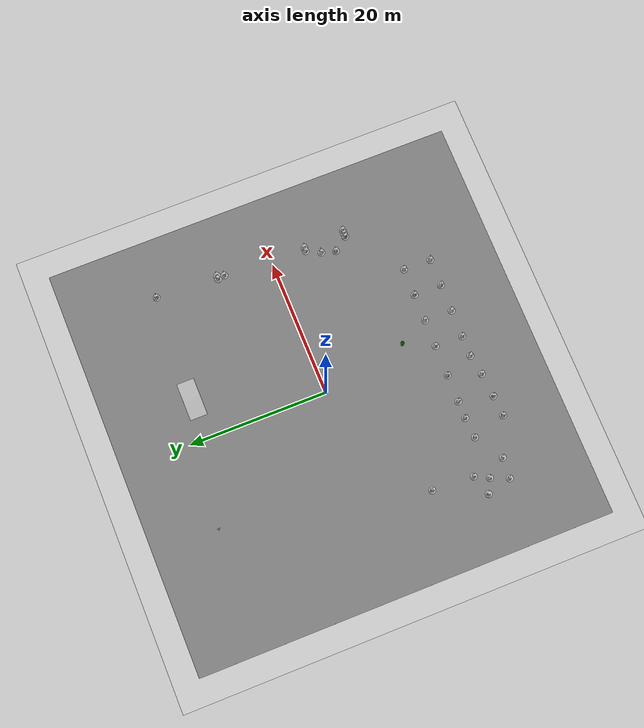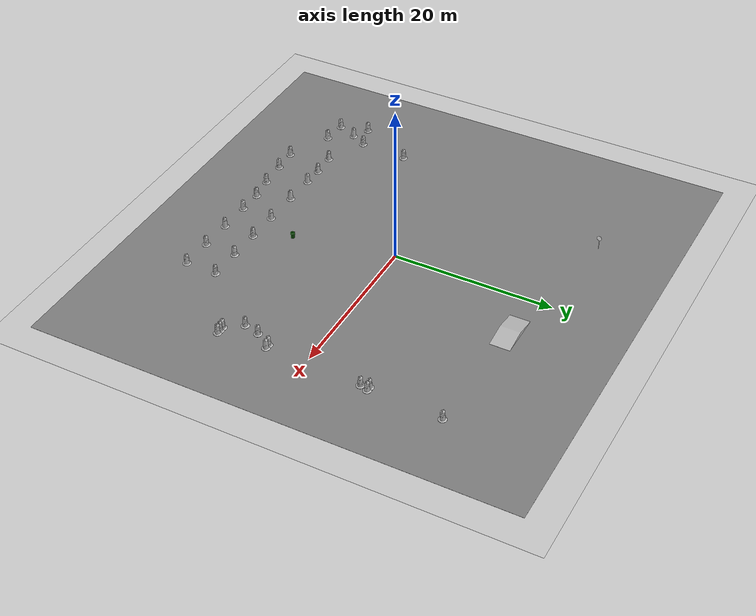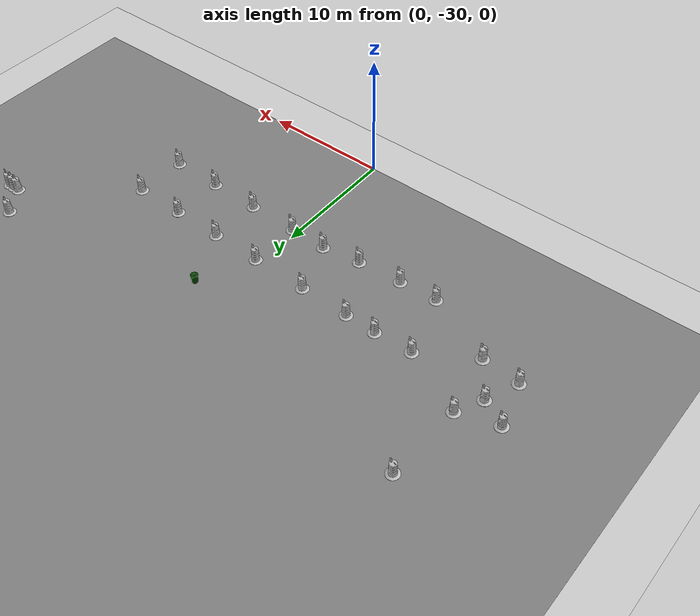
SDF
<sdf version="1.7">
 <world name="default">
  <scene><ambient>1 1 1</ambient><grid>false</grid></scene>
  <frame name="igvc_frame"><pose relative_to="world">-2.5 17.2 0 0 0 3.1415</pose></frame>
  <spherical_coordinates>
   <surface_model>EARTH_WGS84</surface_model>
   <world_frame_orientation>ENU</world_frame_orientation>
   <latitude_deg>42.66791</latitude_deg>
   <longitude_deg>-83.21958</longitude_deg>
   <elevation>286</elevation>
   <heading_deg>0</heading_deg>
  </spherical_coordinates>
  <physics name="1ms" type="ODE">
   <max_step_size>0.001</max_step_size>
   <real_time_factor>1.0</real_time_factor>
  </physics>
  <plugin filename="gz-sim-physics-system" name="gz::sim::systems::Physics"/>
  <plugin filename="gz-sim-user-commands-system" name="gz::sim::systems::UserCommands"/>
  <plugin filename="gz-sim-scene-broadcaster-system" name="gz::sim::systems::SceneBroadcaster"/>
  <plugin filename="gz-sim-contact-system" name="gz::sim::systems::Contact"/>
  <plugin filename="gz-sim-imu-system" name="gz::sim::systems::Imu"/>
  <plugin filename="ignition-gazebo-navsat-system" name="ignition::gazebo::systems::NavSat"/>
  <include>
   <uri>model://ground_plane</uri>
   <name>Ground Plane</name>
   <pose relative_to="igvc_frame">0 0 0 0 0 0</pose>
  </include>
  <include>
   <uri>model://stop_sign</uri>
   <name>Stop Sign</name>
   <pose relative_to="igvc_frame">-12.5 20.5 0 0 0 1.5707</pose>
  </include>
  <include>
   <uri>model://first_2015_trash_can</uri>
   <name>Trash Can</name>
   <pose relative_to="igvc_frame">2.5 -12.5 0 0 0 -3.1415</pose>
  </include>
  <include>
   <uri>model://igvc_track</uri>
   <name>IGVC Track</name>
   <pose relative_to="igvc_frame">0 0 0 0 0 0</pose>
  </include>
  <include>
   <uri>model://ramp</uri>
   <name>Ramp</name>
   <pose relative_to="igvc_frame">6.0 17.5 0 0 0 -3.1415</pose>
  </include>
  <model name="construction_barrels_group">
   <static>1</static>
   <pose relative_to="igvc_frame">15.3924 -3.1409 0 0 0 1.5625</pose>
   <link name="link">
    <pose>-2.8924 -7.3591 0 0 0 -1.5792</pose>
    <inertial>
     <mass>1.0</mass>
     <inertia><ixx>1.0</ixx><ixy>0.0</ixy><ixz>0.0</ixz><iyy>1.0</iyy><iyz>0.0</iyz><izz>1.0</izz></inertia>
    </inertial>
   </link>
   <include>
    <uri>model://construction_barrel</uri>
    <name>Construction_Barrel</name>
    <pose>-13.6357 23.2323 0 0 0 -1.5792</pose>
   </include>
   <include>
    <uri>model://construction_barrel</uri>
    <name>Construction_Barrel_0</name>
    <pose>-16.0307 35.7528 0 0 0 -1.5792</pose>
   </include>
   <include>
    <uri>model://construction_barrel</uri>
    <name>Construction_Barrel_1</name>
    <pose>-18.4272 24.2726 0 0 0 -1.5792</pose>
   </include>
   <include>
    <uri>model://construction_barrel</uri>
    <name>Construction_Barrel_2</name>
    <pose>-11.5476 33.7151 0 0 0 -1.5792</pose>
   </include>
   <include>
    <uri>model://construction_barrel</uri>
    <name>Construction_Barrel_3</name>
    <pose>-12.5224 36.7234 0 0 0 -1.5792</pose>
   </include>
   <include>
    <uri>model://construction_barrel</uri>
    <name>Construction_Barrel_4</name>
    <pose>-13.5391 34.7318 0 0 0 -1.5792</pose>
   </include>
   <include>
    <uri>model://construction_barrel</uri>
    <name>Construction_Barrel_5</name>
    <pose>-18.602 27.2741 0 0 0 -1.5792</pose>
   </include>
   <include>
    <uri>model://construction_barrel</uri>
    <name>Construction_Barrel_6</name>
    <pose>-17.8079 2.76661 0 0 0 -1.5792</pose>
   </include>
   <include>
    <uri>model://construction_barrel</uri>
    <name>Construction_Barrel_7</name>
    <pose>-18.1566 20.7701 0 0 0 -1.5792</pose>
   </include>
   <include>
    <uri>model://construction_barrel</uri>
    <name>Construction_Barrel_8</name>
    <pose>-17.707 14.7661 0 0 0 -1.5792</pose>
   </include>
   <include>
    <uri>model://construction_barrel</uri>
    <name>Construction_Barrel_9</name>
    <pose>-5.54936 33.4647 0 0 0 -1.5792</pose>
   </include>
   <include>
    <uri>model://construction_barrel</uri>
    <name>Construction_Barrel_10</name>
    <pose>-13.6694 19.2324 0 0 0 -1.5792</pose>
   </include>
   <include>
    <uri>model://construction_barrel</uri>
    <name>Construction_Barrel_11</name>
    <pose>-13.7895 28.7337 0 0 0 -1.5792</pose>
   </include>
   <include>
    <uri>model://construction_barrel</uri>
    <name>Construction_Barrel_12</name>
    <pose>-16.2559 32.7546 0 0 0 -1.5792</pose>
   </include>
   <include>
    <uri>model://construction_barrel</uri>
    <name>Construction_Barrel_13</name>
    <pose>-7.8796 -5.81719 0 0 0 -1.5792</pose>
   </include>
   <include>
    <uri>model://construction_barrel</uri>
    <name>Construction_Barrel_14</name>
    <pose>-13.6148 25.7321 0 0 0 -1.5792</pose>
   </include>
   <include>
    <uri>model://construction_barrel</uri>
    <name>Construction_Barrel_15</name>
    <pose>-1.87559 -5.3676 0 0 0 -1.5792</pose>
   </include>
   <include>
    <uri>model://construction_barrel</uri>
    <name>Construction_Barrel_16</name>
    <pose>-5.85869 -3.3341 0 0 0 -1.5792</pose>
   </include>
   <include>
    <uri>model://construction_barrel</uri>
    <name>Construction_Barrel_17</name>
    <pose>-13.7072 14.7325 0 0 0 -1.5792</pose>
   </include>
   <include>
    <uri>model://construction_barrel</uri>
    <name>Construction_Barrel_18</name>
    <pose>-7.8754 -5.31719 0 0 0 -1.5792</pose>
   </include>
   <include>
    <uri>model://construction_barrel</uri>
    <name>Construction_Barrel_19</name>
    <pose>10.1223 -5.66841 0 0 0 -1.5792</pose>
   </include>
   <include>
    <uri>model://construction_barrel</uri>
    <name>Construction_Barrel_20</name>
    <pose>20.1194 -6.05242 0 0 0 -1.5792</pose>
   </include>
   <include>
    <uri>model://construction_barrel</uri>
    <name>Construction_Barrel_21</name>
    <pose>-17.7406 10.7663 0 0 0 -1.5792</pose>
   </include>
   <include>
    <uri>model://construction_barrel</uri>
    <name>Construction_Barrel_22</name>
    <pose>-1.87139 -4.8676 0 0 0 -1.5792</pose>
   </include>
   <include>
    <uri>model://construction_barrel</uri>
    <name>Construction_Barrel_23</name>
    <pose>11.1197 -5.97681 0 0 0 -1.5792</pose>
   </include>
   <include>
    <uri>model://construction_barrel</uri>
    <name>Construction_Barrel_24</name>
    <pose>-7.8712 -4.81719 0 0 0 -1.5792</pose>
   </include>
   <include>
    <uri>model://construction_barrel</uri>
    <name>Construction_Barrel_25</name>
    <pose>-17.6818 17.766 0 0 0 -1.5792</pose>
   </include>
   <include>
    <uri>model://construction_barrel</uri>
    <name>Construction_Barrel_26</name>
    <pose>11.1239 -5.47681 0 0 0 -1.5792</pose>
   </include>
   <include>
    <uri>model://construction_barrel</uri>
    <name>Construction_Barrel_27</name>
    <pose>-13.808 2.73291 0 0 0 -1.5792</pose>
   </include>
   <include>
    <uri>model://construction_barrel</uri>
    <name>Construction_Barrel_28</name>
    <pose>-13.7408 10.7327 0 0 0 -1.5792</pose>
   </include>
   <include>
    <uri>model://construction_barrel</uri>
    <name>Construction_Barrel_29</name>
    <pose>-3.86296 -3.8508 0 0 0 -1.5792</pose>
   </include>
   <include>
    <uri>model://construction_barrel</uri>
    <name>Construction_Barrel_30</name>
    <pose>-13.7744 6.73282 0 0 0 -1.5792</pose>
   </include>
   <include>
    <uri>model://construction_barrel</uri>
    <name>Construction_Barrel_31</name>
    <pose>-17.7743 6.76633 0 0 0 -1.5792</pose>
   </include>
  </model>
  <light name="sun" type="directional">
   <pose>0 0 10 0 -0 0</pose>
   <diffuse>0.8 0.8 0.8 1</diffuse>
   <specular>0.2 0.2 0.2 1</specular>
   <attenuation>
    <range>1000</range>
    <constant>0.9</constant>
    <linear>0.01</linear>
    <quadratic>0.001</quadratic>
   </attenuation>
   <direction>-0.5 0.1 -0.9</direction>
   <spot><inner_angle>0</inner_angle><outer_angle>0</outer_angle><falloff>0</falloff></spot>
  </light>
  <gravity>0 0 -9.8</gravity>
  <magnetic_field>6e-06 2.3e-05 -4.2e-05</magnetic_field>
  <atmosphere type="adiabatic"/>
  <physics type="ode">
   <max_step_size>0.001</max_step_size>
   <real_time_factor>1</real_time_factor>
   <real_time_update_rate>1000</real_time_update_rate>
  </physics>
  <scene><ambient>0.7 0.7 0.7 1</ambient><background>0.8 0.8 0.8  1</background><shadows>1</shadows></scene>
 </world>
</sdf>

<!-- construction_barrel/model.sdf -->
<sdf version="1.5">
  <model name="construction_barrel">
    <link name="link">
      <inertial>
        <pose>0 0 0.4 0 0 0</pose>
        <mass>500</mass>
        <inertia>
          <ixx>51.2096</ixx>
          <iyy>51.2096</iyy>
          <izz>25</izz>
          <ixy>0</ixy>
          <ixz>0</ixz>
        </inertia>
      </inertial>
      <collision name="collision">
        <geometry>
          <cylinder>
            <radius>0.3</radius>
            <length>2.5</length>
            <!-- Around barrel, not including the base portion, but only the cylinder -->
          </cylinder>
        </geometry>
      </collision>
      <visual name="visual">
        <geometry>
          <mesh>
            <uri>model://construction_barrel/meshes/construction_barrel.dae</uri>
          </mesh>
        </geometry>
      </visual>
    </link>
  </model>
</sdf>

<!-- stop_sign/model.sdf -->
<sdf version="1.5">
  <model name="Stop Sign">
    <static>true</static>
    <link name="link">
      <collision name="collision">
        <geometry>
          <mesh>
            <uri>model://stop_sign/meshes/stop_sign.dae</uri>
          </mesh>
        </geometry>
      </collision>
      <visual name="visual">
        <geometry>
          <mesh>
            <uri>model://stop_sign/meshes/stop_sign.dae</uri>
          </mesh>
        </geometry>
        <material>
          <ambient>1 1 1 1</ambient>
          <diffuse>1 1 1 1</diffuse>
          <specular>0.2 0.2 0.2 1</specular>
          <pbr>
            <metal>
              <albedo_map>model://stop_sign/materials/textures/StopSign_Diffuse.png</albedo_map>
            </metal>
          </pbr>
        </material>
      </visual>
    </link>
  </model>
</sdf>

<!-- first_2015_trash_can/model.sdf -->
<sdf version="1.9">
  <model name="first_2015_trash_can">
    <link name="link">
      <inertial>
        <pose>0 0 0.3683 0 0 0</pose>
        <mass>4.83076</mass>
        <inertia>
          <ixx>0.281534052</ixx>
          <ixy>0</ixy>
          <ixz>0</ixz>
          <iyy>0.281534052</iyy>
          <iyz>0</iyz>
          <izz>0.126222831</izz>
        </inertia>
      </inertial>

      <visual name="visual">
        <geometry>
          <mesh>
            <uri>model://first_2015_trash_can/meshes/trash_can.dae</uri>
          </mesh>
        </geometry>
      </visual>

      <collision name="collision">
        <geometry>
          <mesh>
            <uri>model://first_2015_trash_can/meshes/trash_can.dae</uri>
          </mesh>
        </geometry>
      </collision>
    </link>
  </model>
</sdf>

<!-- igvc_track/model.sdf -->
<sdf version="1.9">
  <model name="igvc_track">
    <static>true</static>
    <link name="link">
      <visual name="visual">
        <cast_shadows>false</cast_shadows>
        <geometry>
          <box>
            <size>60 60 .005</size>
          </box>
        </geometry>
        <material>
          <ambient>0.5 0.5 0.5 1.0</ambient>
          <diffuse>0.5 0.5 0.5 1.0</diffuse>
          <specular>0.2 0.2 0.2 1.0</specular>
          <pbr>
            <metal>
              <albedo_map>model://igvc_track/textures/ground_surface/tarmac2.png</albedo_map>
              <roughness>0.8</roughness>
              <metalness>0.0</metalness>
            </metal>
          </pbr>
        </material>
      </visual>
    </link>
    <link name="link2">
      <pose>0 0 0.006 0 0 0</pose>
      <visual name="visual">
        <cast_shadows>false</cast_shadows>
        <geometry>
          <box>
            <size>60 60 .001</size>
          </box>
        </geometry>
        <material>
          <diffuse>0.5 0.5 0.5 1.0</diffuse>
          <ambient>0.5 0.5 0.5 1.0</ambient>
          <specular>0.2 0.2 0.2 1.0</specular>
          <pbr>
            <metal>
              <albedo_map>model://igvc_track/textures/course/track_floor3.png</albedo_map>
              <roughness>0.8</roughness>
              <metalness>0.0</metalness>
            </metal>
          </pbr>
          <render_order>1</render_order>
          <uv_map>
            <scale>1.0 1.0</scale>
          </uv_map>
        </material>
      </visual>
    </link>
  </model>
</sdf>

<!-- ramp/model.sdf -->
<sdf version="1.5">
  <model name='ramp'>
    <static>true</static>
    <link name='link'>
      <collision name='collision'>
        <geometry>
          <mesh>
            <uri>model://ramp/meshes/ramp.dae</uri>
            <scale>1 1 1</scale>
          </mesh>
        </geometry>
        <max_contacts>10</max_contacts>
        <surface>
          <friction>
            <ode>
              <mu>100</mu>
              <mu2>50</mu2>
            </ode>
          </friction>
        </surface>
      </collision>
      <visual name='visual'>
        <geometry>
          <mesh>
            <uri>model://ramp/meshes/ramp.dae</uri>
            <scale>1 1 1</scale>
          </mesh>
        </geometry>
      </visual>
      <self_collide>0</self_collide>
      <kinematic>0</kinematic>
    </link>
  </model>
</sdf>
